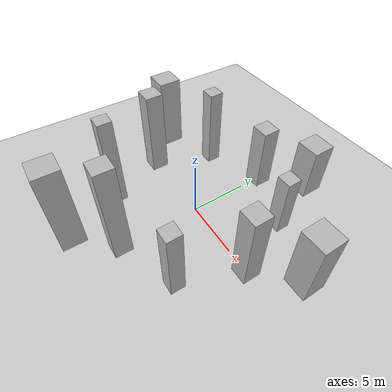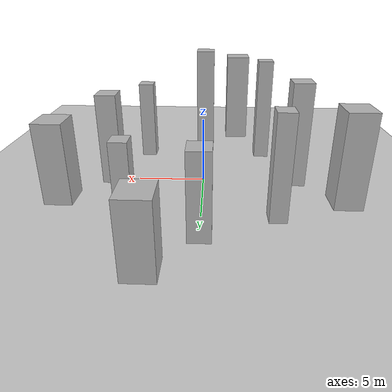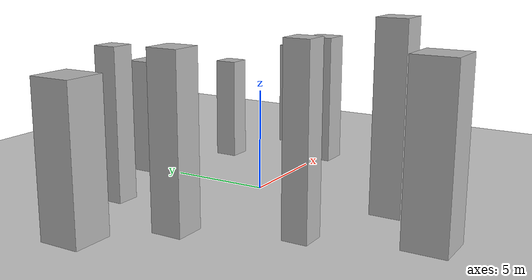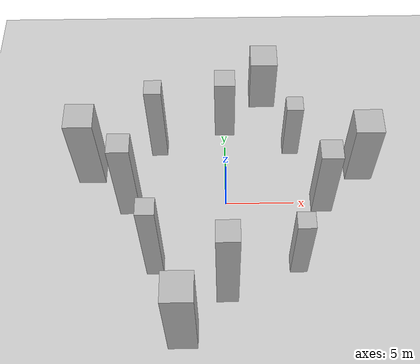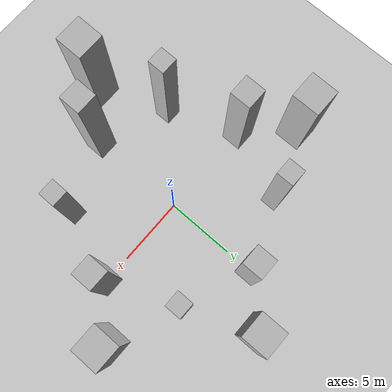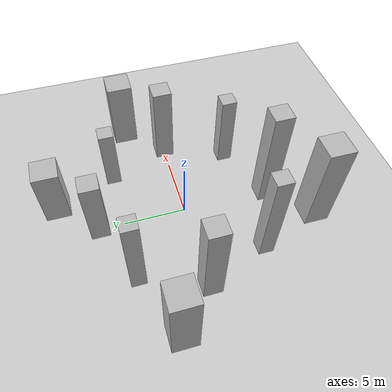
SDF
<sdf version="1.5">
 <world name="light_low">
  <scene>
   <ambient>0.1 0.1 0.1 1.0</ambient>
   <background>0.15 0.15 0.15 1.0</background>
   <shadows>true</shadows>
  </scene>
  <light type="directional" name="sun">
   <pose>0 0 10 0 0 0</pose>
   <diffuse>0.15 0.15 0.15 1</diffuse>
   <specular>0.05 0.05 0.05 1</specular>
   <attenuation>
    <range>1000</range>
    <constant>0.9</constant>
    <linear>0.01</linear>
    <quadratic>0.001</quadratic>
   </attenuation>
   <direction>-0.5 0.1 -0.9</direction>
  </light>
  <include><uri>model://asphalt_plane</uri></include>
  <model name="towers">
   <static>true</static>
   <link name="link">
    <inertial><mass>0.001</mass><inertia><ixx>1e-6</ixx><iyy>1e-6</iyy><izz>1e-6</izz></inertia></inertial>
    <visual name="t0">
     <pose>7 0 3.5 0 0 0</pose>
     <geometry><box><size>1.5 1.5 7</size></box></geometry>
     <material><script>Gazebo/Red</script></material>
    </visual>
    <visual name="t1">
     <pose>-7 0 4.0 0 0 0</pose>
     <geometry><box><size>1.5 1.5 8</size></box></geometry>
     <material><script>Gazebo/Green</script></material>
    </visual>
    <visual name="t2">
     <pose>0 7 3.0 0 0 0</pose>
     <geometry><box><size>1.5 1.5 6</size></box></geometry>
     <material><script>Gazebo/Blue</script></material>
    </visual>
    <visual name="t3">
     <pose>0 -7 4.5 0 0 0</pose>
     <geometry><box><size>1.5 1.5 9</size></box></geometry>
     <material><script>Gazebo/Yellow</script></material>
    </visual>
    <visual name="t4">
     <pose>5 5 2.75 0 0 0</pose>
     <geometry><box><size>1.2 1.2 5.5</size></box></geometry>
     <material><script>Gazebo/Cyan</script></material>
    </visual>
    <visual name="t5">
     <pose>-5 5 3.75 0 0 0</pose>
     <geometry><box><size>1.2 1.2 7.5</size></box></geometry>
     <material><script>Gazebo/Orange</script></material>
    </visual>
    <visual name="t6">
     <pose>5 -5 3.25 0 0 0</pose>
     <geometry><box><size>1.2 1.2 6.5</size></box></geometry>
     <material><script>Gazebo/Purple</script></material>
    </visual>
    <visual name="t7">
     <pose>-5 -5 4.25 0 0 0</pose>
     <geometry><box><size>1.2 1.2 8.5</size></box></geometry>
     <material><script>Gazebo/Grey</script></material>
    </visual>
    <visual name="t8">
     <pose>10 3 3.0 0 0 0</pose>
     <geometry><box><size>2 2 6</size></box></geometry>
     <material><script>Gazebo/DarkGreen</script></material>
    </visual>
    <visual name="t9">
     <pose>-10 3 3.5 0 0 0</pose>
     <geometry><box><size>2 2 7</size></box></geometry>
     <material><script>Gazebo/DarkGrey</script></material>
    </visual>
    <visual name="t10">
     <pose>3 10 2.5 0 0 0</pose>
     <geometry><box><size>2 2 5</size></box></geometry>
     <material><script>Gazebo/Teal</script></material>
    </visual>
    <visual name="t11">
     <pose>-3 -10 4.0 0 0 0</pose>
     <geometry><box><size>2 2 8</size></box></geometry>
     <material><script>Gazebo/Red</script></material>
    </visual>
   </link>
  </model>
  <physics name="default_physics" default="0" type="ode">
   <gravity>0 0 -9.8066</gravity>
   <ode>
    <solver>
     <type>quick</type>
     <iters>10</iters>
     <sor>1.3</sor>
     <use_dynamic_moi_rescaling>0</use_dynamic_moi_rescaling>
    </solver>
    <constraints>
     <cfm>0</cfm>
     <erp>0.2</erp>
     <contact_max_correcting_vel>100</contact_max_correcting_vel>
     <contact_surface_layer>0.001</contact_surface_layer>
    </constraints>
   </ode>
   <max_step_size>0.004</max_step_size>
   <real_time_factor>1</real_time_factor>
   <real_time_update_rate>250</real_time_update_rate>
   <magnetic_field>6.0e-6 2.3e-5 -4.2e-5</magnetic_field>
  </physics>
 </world>
</sdf>
